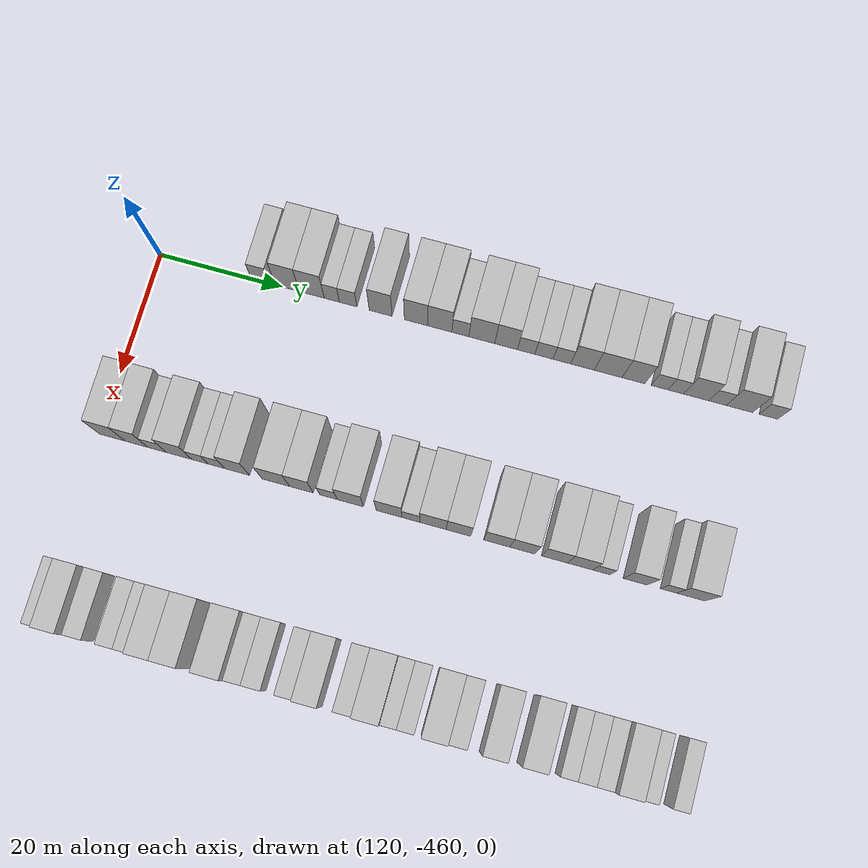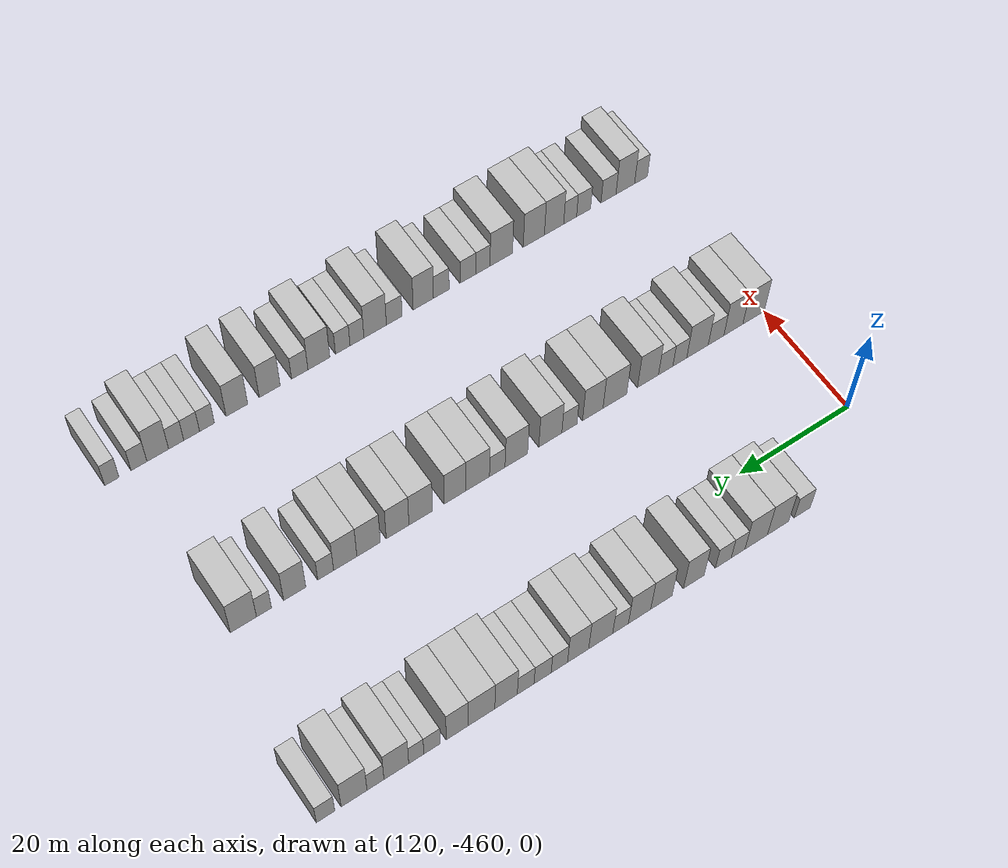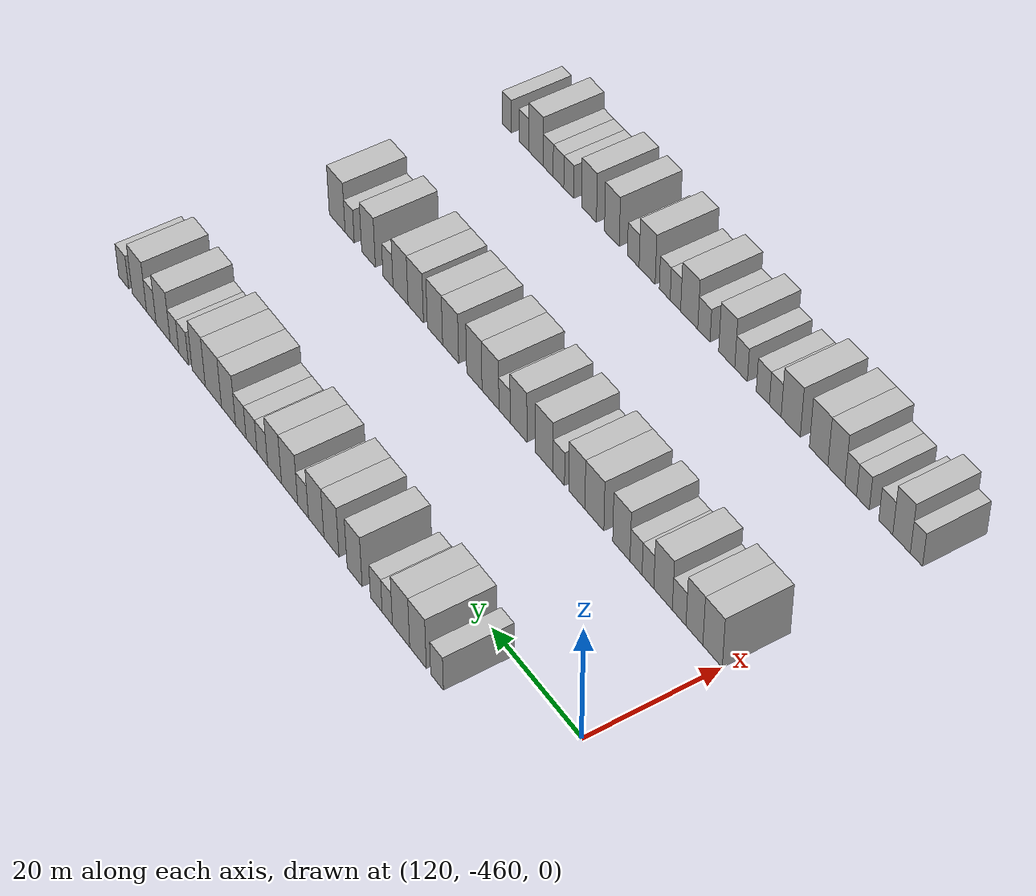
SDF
<sdf version="1.6">
 <world name="default">
  <model name="building_698">
   <static>1</static>
   <pose>115.0000 -443.5995 0 0.000000 0.000000 0.000000</pose>
   <link name="link">
    <pose>0 0 3.00 0 0 0</pose>
    <collision name="collision"><geometry><box><size>10.0000 2.9296 6.0000</size></box></geometry></collision>
    <visual name="visual">
     <cast_shadows>0</cast_shadows>
     <geometry><box><size>10.0000 2.9296 6.0000</size></box></geometry>
     <material>
      <script>
       <uri>model://HANNAS_wall/materials/scripts</uri>
       <uri>model://HANNAS_wall/materials/textures</uri>
       <name>vrc/HANNAS_wall</name>
      </script>
     </material>
    </visual>
   </link>
  </model>
  <model name="building_699">
   <static>1</static>
   <pose>115.0000 -439.1855 0 0.000000 0.000000 0.000000</pose>
   <link name="link">
    <pose>0 0 4.50 0 0 0</pose>
    <collision name="collision"><geometry><box><size>10.0000 3.8984 9.0000</size></box></geometry></collision>
    <visual name="visual">
     <cast_shadows>0</cast_shadows>
     <geometry><box><size>10.0000 3.8984 9.0000</size></box></geometry>
     <material>
      <script>
       <uri>model://HANNAS_wall/materials/scripts</uri>
       <uri>model://HANNAS_wall/materials/textures</uri>
       <name>vrc/HANNAS_wall</name>
      </script>
     </material>
    </visual>
   </link>
  </model>
  <model name="building_700">
   <static>1</static>
   <pose>115.0000 -435.1984 0 0.000000 0.000000 0.000000</pose>
   <link name="link">
    <pose>0 0 4.50 0 0 0</pose>
    <collision name="collision"><geometry><box><size>10.0000 4.0757 9.0000</size></box></geometry></collision>
    <visual name="visual">
     <cast_shadows>0</cast_shadows>
     <geometry><box><size>10.0000 4.0757 9.0000</size></box></geometry>
     <material>
      <script>
       <uri>model://HANNAS_wall/materials/scripts</uri>
       <uri>model://HANNAS_wall/materials/textures</uri>
       <name>vrc/HANNAS_wall</name>
      </script>
     </material>
    </visual>
   </link>
  </model>
  <model name="building_701">
   <static>1</static>
   <pose>115.0000 -431.9343 0 0.000000 0.000000 0.000000</pose>
   <link name="link">
    <pose>0 0 3.00 0 0 0</pose>
    <collision name="collision"><geometry><box><size>10.0000 2.4526 6.0000</size></box></geometry></collision>
    <visual name="visual">
     <cast_shadows>0</cast_shadows>
     <geometry><box><size>10.0000 2.4526 6.0000</size></box></geometry>
     <material>
      <script>
       <uri>model://HANNAS_wall/materials/scripts</uri>
       <uri>model://HANNAS_wall/materials/textures</uri>
       <name>vrc/HANNAS_wall</name>
      </script>
     </material>
    </visual>
   </link>
  </model>
  <model name="building_702">
   <static>1</static>
   <pose>115.0000 -429.2938 0 0.000000 0.000000 0.000000</pose>
   <link name="link">
    <pose>0 0 3.00 0 0 0</pose>
    <collision name="collision"><geometry><box><size>10.0000 2.8282 6.0000</size></box></geometry></collision>
    <visual name="visual">
     <cast_shadows>0</cast_shadows>
     <geometry><box><size>10.0000 2.8282 6.0000</size></box></geometry>
     <material>
      <script>
       <uri>model://HANNAS_wall/materials/scripts</uri>
       <uri>model://HANNAS_wall/materials/textures</uri>
       <name>vrc/HANNAS_wall</name>
      </script>
     </material>
    </visual>
   </link>
  </model>
  <model name="building_703">
   <static>1</static>
   <pose>115.0000 -424.0397 0 0.000000 0.000000 0.000000</pose>
   <link name="link">
    <pose>0 0 4.50 0 0 0</pose>
    <collision name="collision"><geometry><box><size>10.0000 3.6800 9.0000</size></box></geometry></collision>
    <visual name="visual">
     <cast_shadows>0</cast_shadows>
     <geometry><box><size>10.0000 3.6800 9.0000</size></box></geometry>
     <material>
      <script>
       <uri>model://HANNAS_wall/materials/scripts</uri>
       <uri>model://HANNAS_wall/materials/textures</uri>
       <name>vrc/HANNAS_wall</name>
      </script>
     </material>
    </visual>
   </link>
  </model>
  <model name="building_704">
   <static>1</static>
   <pose>115.0000 -418.3239 0 0.000000 0.000000 0.000000</pose>
   <link name="link">
    <pose>0 0 4.50 0 0 0</pose>
    <collision name="collision"><geometry><box><size>10.0000 3.7516 9.0000</size></box></geometry></collision>
    <visual name="visual">
     <cast_shadows>0</cast_shadows>
     <geometry><box><size>10.0000 3.7516 9.0000</size></box></geometry>
     <material>
      <script>
       <uri>model://HANNAS_wall/materials/scripts</uri>
       <uri>model://HANNAS_wall/materials/textures</uri>
       <name>vrc/HANNAS_wall</name>
      </script>
     </material>
    </visual>
   </link>
  </model>
  <model name="building_705">
   <static>1</static>
   <pose>115.0000 -414.5047 0 0.000000 0.000000 0.000000</pose>
   <link name="link">
    <pose>0 0 4.50 0 0 0</pose>
    <collision name="collision"><geometry><box><size>10.0000 3.8868 9.0000</size></box></geometry></collision>
    <visual name="visual">
     <cast_shadows>0</cast_shadows>
     <geometry><box><size>10.0000 3.8868 9.0000</size></box></geometry>
     <material>
      <script>
       <uri>model://HANNAS_wall/materials/scripts</uri>
       <uri>model://HANNAS_wall/materials/textures</uri>
       <name>vrc/HANNAS_wall</name>
      </script>
     </material>
    </visual>
   </link>
  </model>
  <model name="building_706">
   <static>1</static>
   <pose>115.0000 -411.2004 0 0.000000 0.000000 0.000000</pose>
   <link name="link">
    <pose>0 0 3.00 0 0 0</pose>
    <collision name="collision"><geometry><box><size>10.0000 2.7218 6.0000</size></box></geometry></collision>
    <visual name="visual">
     <cast_shadows>0</cast_shadows>
     <geometry><box><size>10.0000 2.7218 6.0000</size></box></geometry>
     <material>
      <script>
       <uri>model://HANNAS_wall/materials/scripts</uri>
       <uri>model://HANNAS_wall/materials/textures</uri>
       <name>vrc/HANNAS_wall</name>
      </script>
     </material>
    </visual>
   </link>
  </model>
  <model name="building_707">
   <static>1</static>
   <pose>115.0000 -407.7695 0 0.000000 0.000000 0.000000</pose>
   <link name="link">
    <pose>0 0 4.50 0 0 0</pose>
    <collision name="collision"><geometry><box><size>10.0000 4.1400 9.0000</size></box></geometry></collision>
    <visual name="visual">
     <cast_shadows>0</cast_shadows>
     <geometry><box><size>10.0000 4.1400 9.0000</size></box></geometry>
     <material>
      <script>
       <uri>model://HANNAS_wall/materials/scripts</uri>
       <uri>model://HANNAS_wall/materials/textures</uri>
       <name>vrc/HANNAS_wall</name>
      </script>
     </material>
    </visual>
   </link>
  </model>
  <model name="building_708">
   <static>1</static>
   <pose>115.0000 -403.8893 0 0.000000 0.000000 0.000000</pose>
   <link name="link">
    <pose>0 0 4.50 0 0 0</pose>
    <collision name="collision"><geometry><box><size>10.0000 3.6204 9.0000</size></box></geometry></collision>
    <visual name="visual">
     <cast_shadows>0</cast_shadows>
     <geometry><box><size>10.0000 3.6204 9.0000</size></box></geometry>
     <material>
      <script>
       <uri>model://HANNAS_wall/materials/scripts</uri>
       <uri>model://HANNAS_wall/materials/textures</uri>
       <name>vrc/HANNAS_wall</name>
      </script>
     </material>
    </visual>
   </link>
  </model>
  <model name="building_709">
   <static>1</static>
   <pose>115.0000 -400.6943 0 0.000000 0.000000 0.000000</pose>
   <link name="link">
    <pose>0 0 3.00 0 0 0</pose>
    <collision name="collision"><geometry><box><size>10.0000 2.7697 6.0000</size></box></geometry></collision>
    <visual name="visual">
     <cast_shadows>0</cast_shadows>
     <geometry><box><size>10.0000 2.7697 6.0000</size></box></geometry>
     <material>
      <script>
       <uri>model://HANNAS_wall/materials/scripts</uri>
       <uri>model://HANNAS_wall/materials/textures</uri>
       <name>vrc/HANNAS_wall</name>
      </script>
     </material>
    </visual>
   </link>
  </model>
  <model name="building_710">
   <static>1</static>
   <pose>115.0000 -397.8583 0 0.000000 0.000000 0.000000</pose>
   <link name="link">
    <pose>0 0 3.00 0 0 0</pose>
    <collision name="collision"><geometry><box><size>10.0000 2.9022 6.0000</size></box></geometry></collision>
    <visual name="visual">
     <cast_shadows>0</cast_shadows>
     <geometry><box><size>10.0000 2.9022 6.0000</size></box></geometry>
     <material>
      <script>
       <uri>model://HANNAS_wall/materials/scripts</uri>
       <uri>model://HANNAS_wall/materials/textures</uri>
       <name>vrc/HANNAS_wall</name>
      </script>
     </material>
    </visual>
   </link>
  </model>
  <model name="building_711">
   <static>1</static>
   <pose>115.0000 -395.0028 0 0.000000 0.000000 0.000000</pose>
   <link name="link">
    <pose>0 0 3.00 0 0 0</pose>
    <collision name="collision"><geometry><box><size>10.0000 2.8088 6.0000</size></box></geometry></collision>
    <visual name="visual">
     <cast_shadows>0</cast_shadows>
     <geometry><box><size>10.0000 2.8088 6.0000</size></box></geometry>
     <material>
      <script>
       <uri>model://HANNAS_wall/materials/scripts</uri>
       <uri>model://HANNAS_wall/materials/textures</uri>
       <name>vrc/HANNAS_wall</name>
      </script>
     </material>
    </visual>
   </link>
  </model>
  <model name="building_712">
   <static>1</static>
   <pose>115.0000 -391.7220 0 0.000000 0.000000 0.000000</pose>
   <link name="link">
    <pose>0 0 4.50 0 0 0</pose>
    <collision name="collision"><geometry><box><size>10.0000 3.7529 9.0000</size></box></geometry></collision>
    <visual name="visual">
     <cast_shadows>0</cast_shadows>
     <geometry><box><size>10.0000 3.7529 9.0000</size></box></geometry>
     <material>
      <script>
       <uri>model://HANNAS_wall/materials/scripts</uri>
       <uri>model://HANNAS_wall/materials/textures</uri>
       <name>vrc/HANNAS_wall</name>
      </script>
     </material>
    </visual>
   </link>
  </model>
  <model name="building_713">
   <static>1</static>
   <pose>115.0000 -387.6395 0 0.000000 0.000000 0.000000</pose>
   <link name="link">
    <pose>0 0 4.50 0 0 0</pose>
    <collision name="collision"><geometry><box><size>10.0000 4.4121 9.0000</size></box></geometry></collision>
    <visual name="visual">
     <cast_shadows>0</cast_shadows>
     <geometry><box><size>10.0000 4.4121 9.0000</size></box></geometry>
     <material>
      <script>
       <uri>model://HANNAS_wall/materials/scripts</uri>
       <uri>model://HANNAS_wall/materials/textures</uri>
       <name>vrc/HANNAS_wall</name>
      </script>
     </material>
    </visual>
   </link>
  </model>
  <model name="building_714">
   <static>1</static>
   <pose>115.0000 -383.6202 0 0.000000 0.000000 0.000000</pose>
   <link name="link">
    <pose>0 0 4.50 0 0 0</pose>
    <collision name="collision"><geometry><box><size>10.0000 3.6266 9.0000</size></box></geometry></collision>
    <visual name="visual">
     <cast_shadows>0</cast_shadows>
     <geometry><box><size>10.0000 3.6266 9.0000</size></box></geometry>
     <material>
      <script>
       <uri>model://HANNAS_wall/materials/scripts</uri>
       <uri>model://HANNAS_wall/materials/textures</uri>
       <name>vrc/HANNAS_wall</name>
      </script>
     </material>
    </visual>
   </link>
  </model>
  <model name="building_715">
   <static>1</static>
   <pose>115.0000 -379.4750 0 0.000000 0.000000 0.000000</pose>
   <link name="link">
    <pose>0 0 3.00 0 0 0</pose>
    <collision name="collision"><geometry><box><size>10.0000 2.6637 6.0000</size></box></geometry></collision>
    <visual name="visual">
     <cast_shadows>0</cast_shadows>
     <geometry><box><size>10.0000 2.6637 6.0000</size></box></geometry>
     <material>
      <script>
       <uri>model://HANNAS_wall/materials/scripts</uri>
       <uri>model://HANNAS_wall/materials/textures</uri>
       <name>vrc/HANNAS_wall</name>
      </script>
     </material>
    </visual>
   </link>
  </model>
  <model name="building_716">
   <static>1</static>
   <pose>115.0000 -376.9219 0 0.000000 0.000000 0.000000</pose>
   <link name="link">
    <pose>0 0 3.00 0 0 0</pose>
    <collision name="collision"><geometry><box><size>10.0000 2.4426 6.0000</size></box></geometry></collision>
    <visual name="visual">
     <cast_shadows>0</cast_shadows>
     <geometry><box><size>10.0000 2.4426 6.0000</size></box></geometry>
     <material>
      <script>
       <uri>model://HANNAS_wall/materials/scripts</uri>
       <uri>model://HANNAS_wall/materials/textures</uri>
       <name>vrc/HANNAS_wall</name>
      </script>
     </material>
    </visual>
   </link>
  </model>
  <model name="building_717">
   <static>1</static>
   <pose>115.0000 -373.7049 0 0.000000 0.000000 0.000000</pose>
   <link name="link">
    <pose>0 0 4.50 0 0 0</pose>
    <collision name="collision"><geometry><box><size>10.0000 3.9914 9.0000</size></box></geometry></collision>
    <visual name="visual">
     <cast_shadows>0</cast_shadows>
     <geometry><box><size>10.0000 3.9914 9.0000</size></box></geometry>
     <material>
      <script>
       <uri>model://HANNAS_wall/materials/scripts</uri>
       <uri>model://HANNAS_wall/materials/textures</uri>
       <name>vrc/HANNAS_wall</name>
      </script>
     </material>
    </visual>
   </link>
  </model>
  <model name="building_718">
   <static>1</static>
   <pose>115.0000 -370.3459 0 0.000000 0.000000 0.000000</pose>
   <link name="link">
    <pose>0 0 3.00 0 0 0</pose>
    <collision name="collision"><geometry><box><size>10.0000 2.7265 6.0000</size></box></geometry></collision>
    <visual name="visual">
     <cast_shadows>0</cast_shadows>
     <geometry><box><size>10.0000 2.7265 6.0000</size></box></geometry>
     <material>
      <script>
       <uri>model://HANNAS_wall/materials/scripts</uri>
       <uri>model://HANNAS_wall/materials/textures</uri>
       <name>vrc/HANNAS_wall</name>
      </script>
     </material>
    </visual>
   </link>
  </model>
  <model name="building_719">
   <static>1</static>
   <pose>115.0000 -366.9175 0 0.000000 0.000000 0.000000</pose>
   <link name="link">
    <pose>0 0 4.50 0 0 0</pose>
    <collision name="collision"><geometry><box><size>10.0000 4.1303 9.0000</size></box></geometry></collision>
    <visual name="visual">
     <cast_shadows>0</cast_shadows>
     <geometry><box><size>10.0000 4.1303 9.0000</size></box></geometry>
     <material>
      <script>
       <uri>model://HANNAS_wall/materials/scripts</uri>
       <uri>model://HANNAS_wall/materials/textures</uri>
       <name>vrc/HANNAS_wall</name>
      </script>
     </material>
    </visual>
   </link>
  </model>
  <model name="building_720">
   <static>1</static>
   <pose>115.0000 -362.3965 0 0.000000 0.000000 0.000000</pose>
   <link name="link">
    <pose>0 0 3.00 0 0 0</pose>
    <collision name="collision"><geometry><box><size>10.0000 2.9118 6.0000</size></box></geometry></collision>
    <visual name="visual">
     <cast_shadows>0</cast_shadows>
     <geometry><box><size>10.0000 2.9118 6.0000</size></box></geometry>
     <material>
      <script>
       <uri>model://HANNAS_wall/materials/scripts</uri>
       <uri>model://HANNAS_wall/materials/textures</uri>
       <name>vrc/HANNAS_wall</name>
      </script>
     </material>
    </visual>
   </link>
  </model>
  <model name="building_915">
   <static>1</static>
   <pose>145.0000 -457.9413 0 0.000000 0.000000 0.000000</pose>
   <link name="link">
    <pose>0 0 4.50 0 0 0</pose>
    <collision name="collision"><geometry><box><size>10.0000 4.1174 9.0000</size></box></geometry></collision>
    <visual name="visual">
     <cast_shadows>0</cast_shadows>
     <geometry><box><size>10.0000 4.1174 9.0000</size></box></geometry>
     <material>
      <script>
       <uri>model://HANNAS_wall/materials/scripts</uri>
       <uri>model://HANNAS_wall/materials/textures</uri>
       <name>vrc/HANNAS_wall</name>
      </script>
     </material>
    </visual>
   </link>
  </model>
  <model name="building_916">
   <static>1</static>
   <pose>145.0000 -454.0753 0 0.000000 0.000000 0.000000</pose>
   <link name="link">
    <pose>0 0 4.50 0 0 0</pose>
    <collision name="collision"><geometry><box><size>10.0000 3.6146 9.0000</size></box></geometry></collision>
    <visual name="visual">
     <cast_shadows>0</cast_shadows>
     <geometry><box><size>10.0000 3.6146 9.0000</size></box></geometry>
     <material>
      <script>
       <uri>model://HANNAS_wall/materials/scripts</uri>
       <uri>model://HANNAS_wall/materials/textures</uri>
       <name>vrc/HANNAS_wall</name>
      </script>
     </material>
    </visual>
   </link>
  </model>
  <model name="building_917">
   <static>1</static>
   <pose>145.0000 -450.7902 0 0.000000 0.000000 0.000000</pose>
   <link name="link">
    <pose>0 0 3.00 0 0 0</pose>
    <collision name="collision"><geometry><box><size>10.0000 2.9557 6.0000</size></box></geometry></collision>
    <visual name="visual">
     <cast_shadows>0</cast_shadows>
     <geometry><box><size>10.0000 2.9557 6.0000</size></box></geometry>
     <material>
      <script>
       <uri>model://HANNAS_wall/materials/scripts</uri>
       <uri>model://HANNAS_wall/materials/textures</uri>
       <name>vrc/HANNAS_wall</name>
      </script>
     </material>
    </visual>
   </link>
  </model>
  <model name="building_918">
   <static>1</static>
   <pose>145.0000 -447.2858 0 0.000000 0.000000 0.000000</pose>
   <link name="link">
    <pose>0 0 4.50 0 0 0</pose>
    <collision name="collision"><geometry><box><size>10.0000 4.0530 9.0000</size></box></geometry></collision>
    <visual name="visual">
     <cast_shadows>0</cast_shadows>
     <geometry><box><size>10.0000 4.0530 9.0000</size></box></geometry>
     <material>
      <script>
       <uri>model://HANNAS_wall/materials/scripts</uri>
       <uri>model://HANNAS_wall/materials/textures</uri>
       <name>vrc/HANNAS_wall</name>
      </script>
     </material>
    </visual>
   </link>
  </model>
  <model name="building_919">
   <static>1</static>
   <pose>145.0000 -443.9669 0 0.000000 0.000000 0.000000</pose>
   <link name="link">
    <pose>0 0 3.00 0 0 0</pose>
    <collision name="collision"><geometry><box><size>10.0000 2.5848 6.0000</size></box></geometry></collision>
    <visual name="visual">
     <cast_shadows>0</cast_shadows>
     <geometry><box><size>10.0000 2.5848 6.0000</size></box></geometry>
     <material>
      <script>
       <uri>model://HANNAS_wall/materials/scripts</uri>
       <uri>model://HANNAS_wall/materials/textures</uri>
       <name>vrc/HANNAS_wall</name>
      </script>
     </material>
    </visual>
   </link>
  </model>
  <model name="building_920">
   <static>1</static>
   <pose>145.0000 -441.3345 0 0.000000 0.000000 0.000000</pose>
   <link name="link">
    <pose>0 0 3.00 0 0 0</pose>
    <collision name="collision"><geometry><box><size>10.0000 2.6800 6.0000</size></box></geometry></collision>
    <visual name="visual">
     <cast_shadows>0</cast_shadows>
     <geometry><box><size>10.0000 2.6800 6.0000</size></box></geometry>
     <material>
      <script>
       <uri>model://HANNAS_wall/materials/scripts</uri>
       <uri>model://HANNAS_wall/materials/textures</uri>
       <name>vrc/HANNAS_wall</name>
      </script>
     </material>
    </visual>
   </link>
  </model>
  <model name="building_921">
   <static>1</static>
   <pose>145.0000 -438.0496 0 0.000000 0.000000 0.000000</pose>
   <link name="link">
    <pose>0 0 4.50 0 0 0</pose>
    <collision name="collision"><geometry><box><size>10.0000 3.8899 9.0000</size></box></geometry></collision>
    <visual name="visual">
     <cast_shadows>0</cast_shadows>
     <geometry><box><size>10.0000 3.8899 9.0000</size></box></geometry>
     <material>
      <script>
       <uri>model://HANNAS_wall/materials/scripts</uri>
       <uri>model://HANNAS_wall/materials/textures</uri>
       <name>vrc/HANNAS_wall</name>
      </script>
     </material>
    </visual>
   </link>
  </model>
  <model name="building_922">
   <static>1</static>
   <pose>145.0000 -431.9407 0 0.000000 0.000000 0.000000</pose>
   <link name="link">
    <pose>0 0 4.50 0 0 0</pose>
    <collision name="collision"><geometry><box><size>10.0000 4.3278 9.0000</size></box></geometry></collision>
    <visual name="visual">
     <cast_shadows>0</cast_shadows>
     <geometry><box><size>10.0000 4.3278 9.0000</size></box></geometry>
     <material>
      <script>
       <uri>model://HANNAS_wall/materials/scripts</uri>
       <uri>model://HANNAS_wall/materials/textures</uri>
       <name>vrc/HANNAS_wall</name>
      </script>
     </material>
    </visual>
   </link>
  </model>
  <model name="building_923">
   <static>1</static>
   <pose>145.0000 -427.9096 0 0.000000 0.000000 0.000000</pose>
   <link name="link">
    <pose>0 0 4.50 0 0 0</pose>
    <collision name="collision"><geometry><box><size>10.0000 3.7344 9.0000</size></box></geometry></collision>
    <visual name="visual">
     <cast_shadows>0</cast_shadows>
     <geometry><box><size>10.0000 3.7344 9.0000</size></box></geometry>
     <material>
      <script>
       <uri>model://HANNAS_wall/materials/scripts</uri>
       <uri>model://HANNAS_wall/materials/textures</uri>
       <name>vrc/HANNAS_wall</name>
      </script>
     </material>
    </visual>
   </link>
  </model>
  <model name="building_924">
   <static>1</static>
   <pose>145.0000 -423.6688 0 0.000000 0.000000 0.000000</pose>
   <link name="link">
    <pose>0 0 3.00 0 0 0</pose>
    <collision name="collision"><geometry><box><size>10.0000 2.7472 6.0000</size></box></geometry></collision>
    <visual name="visual">
     <cast_shadows>0</cast_shadows>
     <geometry><box><size>10.0000 2.7472 6.0000</size></box></geometry>
     <material>
      <script>
       <uri>model://HANNAS_wall/materials/scripts</uri>
       <uri>model://HANNAS_wall/materials/textures</uri>
       <name>vrc/HANNAS_wall</name>
      </script>
     </material>
    </visual>
   </link>
  </model>
  <model name="building_925">
   <static>1</static>
   <pose>145.0000 -420.2293 0 0.000000 0.000000 0.000000</pose>
   <link name="link">
    <pose>0 0 4.50 0 0 0</pose>
    <collision name="collision"><geometry><box><size>10.0000 4.1318 9.0000</size></box></geometry></collision>
    <visual name="visual">
     <cast_shadows>0</cast_shadows>
     <geometry><box><size>10.0000 4.1318 9.0000</size></box></geometry>
     <material>
      <script>
       <uri>model://HANNAS_wall/materials/scripts</uri>
       <uri>model://HANNAS_wall/materials/textures</uri>
       <name>vrc/HANNAS_wall</name>
      </script>
     </material>
    </visual>
   </link>
  </model>
  <model name="building_926">
   <static>1</static>
   <pose>145.0000 -414.1540 0 0.000000 0.000000 0.000000</pose>
   <link name="link">
    <pose>0 0 4.50 0 0 0</pose>
    <collision name="collision"><geometry><box><size>10.0000 4.0189 9.0000</size></box></geometry></collision>
    <visual name="visual">
     <cast_shadows>0</cast_shadows>
     <geometry><box><size>10.0000 4.0189 9.0000</size></box></geometry>
     <material>
      <script>
       <uri>model://HANNAS_wall/materials/scripts</uri>
       <uri>model://HANNAS_wall/materials/textures</uri>
       <name>vrc/HANNAS_wall</name>
      </script>
     </material>
    </visual>
   </link>
  </model>
  <model name="building_927">
   <static>1</static>
   <pose>145.0000 -410.7741 0 0.000000 0.000000 0.000000</pose>
   <link name="link">
    <pose>0 0 3.00 0 0 0</pose>
    <collision name="collision"><geometry><box><size>10.0000 2.7409 6.0000</size></box></geometry></collision>
    <visual name="visual">
     <cast_shadows>0</cast_shadows>
     <geometry><box><size>10.0000 2.7409 6.0000</size></box></geometry>
     <material>
      <script>
       <uri>model://HANNAS_wall/materials/scripts</uri>
       <uri>model://HANNAS_wall/materials/textures</uri>
       <name>vrc/HANNAS_wall</name>
      </script>
     </material>
    </visual>
   </link>
  </model>
  <model name="building_928">
   <static>1</static>
   <pose>145.0000 -407.3245 0 0.000000 0.000000 0.000000</pose>
   <link name="link">
    <pose>0 0 4.50 0 0 0</pose>
    <collision name="collision"><geometry><box><size>10.0000 4.1583 9.0000</size></box></geometry></collision>
    <visual name="visual">
     <cast_shadows>0</cast_shadows>
     <geometry><box><size>10.0000 4.1583 9.0000</size></box></geometry>
     <material>
      <script>
       <uri>model://HANNAS_wall/materials/scripts</uri>
       <uri>model://HANNAS_wall/materials/textures</uri>
       <name>vrc/HANNAS_wall</name>
      </script>
     </material>
    </visual>
   </link>
  </model>
  <model name="building_929">
   <static>1</static>
   <pose>145.0000 -403.3479 0 0.000000 0.000000 0.000000</pose>
   <link name="link">
    <pose>0 0 4.50 0 0 0</pose>
    <collision name="collision"><geometry><box><size>10.0000 3.7951 9.0000</size></box></geometry></collision>
    <visual name="visual">
     <cast_shadows>0</cast_shadows>
     <geometry><box><size>10.0000 3.7951 9.0000</size></box></geometry>
     <material>
      <script>
       <uri>model://HANNAS_wall/materials/scripts</uri>
       <uri>model://HANNAS_wall/materials/textures</uri>
       <name>vrc/HANNAS_wall</name>
      </script>
     </material>
    </visual>
   </link>
  </model>
  <model name="building_930">
   <static>1</static>
   <pose>145.0000 -397.4223 0 0.000000 0.000000 0.000000</pose>
   <link name="link">
    <pose>0 0 4.50 0 0 0</pose>
    <collision name="collision"><geometry><box><size>10.0000 4.0562 9.0000</size></box></geometry></collision>
    <visual name="visual">
     <cast_shadows>0</cast_shadows>
     <geometry><box><size>10.0000 4.0562 9.0000</size></box></geometry>
     <material>
      <script>
       <uri>model://HANNAS_wall/materials/scripts</uri>
       <uri>model://HANNAS_wall/materials/textures</uri>
       <name>vrc/HANNAS_wall</name>
      </script>
     </material>
    </visual>
   </link>
  </model>
  <model name="building_931">
   <static>1</static>
   <pose>145.0000 -393.4484 0 0.000000 0.000000 0.000000</pose>
   <link name="link">
    <pose>0 0 4.50 0 0 0</pose>
    <collision name="collision"><geometry><box><size>10.0000 3.8916 9.0000</size></box></geometry></collision>
    <visual name="visual">
     <cast_shadows>0</cast_shadows>
     <geometry><box><size>10.0000 3.8916 9.0000</size></box></geometry>
     <material>
      <script>
       <uri>model://HANNAS_wall/materials/scripts</uri>
       <uri>model://HANNAS_wall/materials/textures</uri>
       <name>vrc/HANNAS_wall</name>
      </script>
     </material>
    </visual>
   </link>
  </model>
  <model name="building_932">
   <static>1</static>
   <pose>145.0000 -388.5059 0 0.000000 0.000000 0.000000</pose>
   <link name="link">
    <pose>0 0 4.50 0 0 0</pose>
    <collision name="collision"><geometry><box><size>10.0000 3.9932 9.0000</size></box></geometry></collision>
    <visual name="visual">
     <cast_shadows>0</cast_shadows>
     <geometry><box><size>10.0000 3.9932 9.0000</size></box></geometry>
     <material>
      <script>
       <uri>model://HANNAS_wall/materials/scripts</uri>
       <uri>model://HANNAS_wall/materials/textures</uri>
       <name>vrc/HANNAS_wall</name>
      </script>
     </material>
    </visual>
   </link>
  </model>
  <model name="building_933">
   <static>1</static>
   <pose>145.0000 -384.5491 0 0.000000 0.000000 0.000000</pose>
   <link name="link">
    <pose>0 0 4.50 0 0 0</pose>
    <collision name="collision"><geometry><box><size>10.0000 3.9203 9.0000</size></box></geometry></collision>
    <visual name="visual">
     <cast_shadows>0</cast_shadows>
     <geometry><box><size>10.0000 3.9203 9.0000</size></box></geometry>
     <material>
      <script>
       <uri>model://HANNAS_wall/materials/scripts</uri>
       <uri>model://HANNAS_wall/materials/textures</uri>
       <name>vrc/HANNAS_wall</name>
      </script>
     </material>
    </visual>
   </link>
  </model>
  <model name="building_934">
   <static>1</static>
   <pose>145.0000 -381.2553 0 0.000000 0.000000 0.000000</pose>
   <link name="link">
    <pose>0 0 3.00 0 0 0</pose>
    <collision name="collision"><geometry><box><size>10.0000 2.6674 6.0000</size></box></geometry></collision>
    <visual name="visual">
     <cast_shadows>0</cast_shadows>
     <geometry><box><size>10.0000 2.6674 6.0000</size></box></geometry>
     <material>
      <script>
       <uri>model://HANNAS_wall/materials/scripts</uri>
       <uri>model://HANNAS_wall/materials/textures</uri>
       <name>vrc/HANNAS_wall</name>
      </script>
     </material>
    </visual>
   </link>
  </model>
  <model name="building_935">
   <static>1</static>
   <pose>145.0000 -376.0848 0 0.000000 0.000000 0.000000</pose>
   <link name="link">
    <pose>0 0 4.50 0 0 0</pose>
    <collision name="collision"><geometry><box><size>10.0000 3.6736 9.0000</size></box></geometry></collision>
    <visual name="visual">
     <cast_shadows>0</cast_shadows>
     <geometry><box><size>10.0000 3.6736 9.0000</size></box></geometry>
     <material>
      <script>
       <uri>model://HANNAS_wall/materials/scripts</uri>
       <uri>model://HANNAS_wall/materials/textures</uri>
       <name>vrc/HANNAS_wall</name>
      </script>
     </material>
    </visual>
   </link>
  </model>
  <model name="building_936">
   <static>1</static>
   <pose>145.0000 -371.0066 0 0.000000 0.000000 0.000000</pose>
   <link name="link">
    <pose>0 0 3.00 0 0 0</pose>
    <collision name="collision"><geometry><box><size>10.0000 2.4828 6.0000</size></box></geometry></collision>
    <visual name="visual">
     <cast_shadows>0</cast_shadows>
     <geometry><box><size>10.0000 2.4828 6.0000</size></box></geometry>
     <material>
      <script>
       <uri>model://HANNAS_wall/materials/scripts</uri>
       <uri>model://HANNAS_wall/materials/textures</uri>
       <name>vrc/HANNAS_wall</name>
      </script>
     </material>
    </visual>
   </link>
  </model>
  <model name="building_937">
   <static>1</static>
   <pose>145.0000 -367.6151 0 0.000000 0.000000 0.000000</pose>
   <link name="link">
    <pose>0 0 4.50 0 0 0</pose>
    <collision name="collision"><geometry><box><size>10.0000 4.3002 9.0000</size></box></geometry></collision>
    <visual name="visual">
     <cast_shadows>0</cast_shadows>
     <geometry><box><size>10.0000 4.3002 9.0000</size></box></geometry>
     <material>
      <script>
       <uri>model://HANNAS_wall/materials/scripts</uri>
       <uri>model://HANNAS_wall/materials/textures</uri>
       <name>vrc/HANNAS_wall</name>
      </script>
     </material>
    </visual>
   </link>
  </model>
  <model name="building_1146">
   <static>1</static>
   <pose>175.0000 -458.7467 0 0.000000 0.000000 0.000000</pose>
   <link name="link">
    <pose>0 0 3.00 0 0 0</pose>
    <collision name="collision"><geometry><box><size>10.0000 2.5066 6.0000</size></box></geometry></collision>
    <visual name="visual">
     <cast_shadows>0</cast_shadows>
     <geometry><box><size>10.0000 2.5066 6.0000</size></box></geometry>
     <material>
      <script>
       <uri>model://HANNAS_wall/materials/scripts</uri>
       <uri>model://HANNAS_wall/materials/textures</uri>
       <name>vrc/HANNAS_wall</name>
      </script>
     </material>
    </visual>
   </link>
  </model>
  <model name="building_1147">
   <static>1</static>
   <pose>175.0000 -455.6865 0 0.000000 0.000000 0.000000</pose>
   <link name="link">
    <pose>0 0 4.50 0 0 0</pose>
    <collision name="collision"><geometry><box><size>10.0000 3.6139 9.0000</size></box></geometry></collision>
    <visual name="visual">
     <cast_shadows>0</cast_shadows>
     <geometry><box><size>10.0000 3.6139 9.0000</size></box></geometry>
     <material>
      <script>
       <uri>model://HANNAS_wall/materials/scripts</uri>
       <uri>model://HANNAS_wall/materials/textures</uri>
       <name>vrc/HANNAS_wall</name>
      </script>
     </material>
    </visual>
   </link>
  </model>
  <model name="building_1148">
   <static>1</static>
   <pose>175.0000 -452.4267 0 0.000000 0.000000 0.000000</pose>
   <link name="link">
    <pose>0 0 3.00 0 0 0</pose>
    <collision name="collision"><geometry><box><size>10.0000 2.9057 6.0000</size></box></geometry></collision>
    <visual name="visual">
     <cast_shadows>0</cast_shadows>
     <geometry><box><size>10.0000 2.9057 6.0000</size></box></geometry>
     <material>
      <script>
       <uri>model://HANNAS_wall/materials/scripts</uri>
       <uri>model://HANNAS_wall/materials/textures</uri>
       <name>vrc/HANNAS_wall</name>
      </script>
     </material>
    </visual>
   </link>
  </model>
  <model name="building_1149">
   <static>1</static>
   <pose>175.0000 -447.6343 0 0.000000 0.000000 0.000000</pose>
   <link name="link">
    <pose>0 0 3.00 0 0 0</pose>
    <collision name="collision"><geometry><box><size>10.0000 2.6793 6.0000</size></box></geometry></collision>
    <visual name="visual">
     <cast_shadows>0</cast_shadows>
     <geometry><box><size>10.0000 2.6793 6.0000</size></box></geometry>
     <material>
      <script>
       <uri>model://HANNAS_wall/materials/scripts</uri>
       <uri>model://HANNAS_wall/materials/textures</uri>
       <name>vrc/HANNAS_wall</name>
      </script>
     </material>
    </visual>
   </link>
  </model>
  <model name="building_1150">
   <static>1</static>
   <pose>175.0000 -445.0583 0 0.000000 0.000000 0.000000</pose>
   <link name="link">
    <pose>0 0 3.00 0 0 0</pose>
    <collision name="collision"><geometry><box><size>10.0000 2.4726 6.0000</size></box></geometry></collision>
    <visual name="visual">
     <cast_shadows>0</cast_shadows>
     <geometry><box><size>10.0000 2.4726 6.0000</size></box></geometry>
     <material>
      <script>
       <uri>model://HANNAS_wall/materials/scripts</uri>
       <uri>model://HANNAS_wall/materials/textures</uri>
       <name>vrc/HANNAS_wall</name>
      </script>
     </material>
    </visual>
   </link>
  </model>
  <model name="building_1151">
   <static>1</static>
   <pose>175.0000 -441.9937 0 0.000000 0.000000 0.000000</pose>
   <link name="link">
    <pose>0 0 4.50 0 0 0</pose>
    <collision name="collision"><geometry><box><size>10.0000 3.6567 9.0000</size></box></geometry></collision>
    <visual name="visual">
     <cast_shadows>0</cast_shadows>
     <geometry><box><size>10.0000 3.6567 9.0000</size></box></geometry>
     <material>
      <script>
       <uri>model://HANNAS_wall/materials/scripts</uri>
       <uri>model://HANNAS_wall/materials/textures</uri>
       <name>vrc/HANNAS_wall</name>
      </script>
     </material>
    </visual>
   </link>
  </model>
  <model name="building_1152">
   <static>1</static>
   <pose>175.0000 -438.1615 0 0.000000 0.000000 0.000000</pose>
   <link name="link">
    <pose>0 0 4.50 0 0 0</pose>
    <collision name="collision"><geometry><box><size>10.0000 4.0078 9.0000</size></box></geometry></collision>
    <visual name="visual">
     <cast_shadows>0</cast_shadows>
     <geometry><box><size>10.0000 4.0078 9.0000</size></box></geometry>
     <material>
      <script>
       <uri>model://HANNAS_wall/materials/scripts</uri>
       <uri>model://HANNAS_wall/materials/textures</uri>
       <name>vrc/HANNAS_wall</name>
      </script>
     </material>
    </visual>
   </link>
  </model>
  <model name="building_1153">
   <static>1</static>
   <pose>175.0000 -432.0461 0 0.000000 0.000000 0.000000</pose>
   <link name="link">
    <pose>0 0 4.50 0 0 0</pose>
    <collision name="collision"><geometry><box><size>10.0000 4.2231 9.0000</size></box></geometry></collision>
    <visual name="visual">
     <cast_shadows>0</cast_shadows>
     <geometry><box><size>10.0000 4.2231 9.0000</size></box></geometry>
     <material>
      <script>
       <uri>model://HANNAS_wall/materials/scripts</uri>
       <uri>model://HANNAS_wall/materials/textures</uri>
       <name>vrc/HANNAS_wall</name>
      </script>
     </material>
    </visual>
   </link>
  </model>
  <model name="building_1154">
   <static>1</static>
   <pose>175.0000 -428.6240 0 0.000000 0.000000 0.000000</pose>
   <link name="link">
    <pose>0 0 3.00 0 0 0</pose>
    <collision name="collision"><geometry><box><size>10.0000 2.6210 6.0000</size></box></geometry></collision>
    <visual name="visual">
     <cast_shadows>0</cast_shadows>
     <geometry><box><size>10.0000 2.6210 6.0000</size></box></geometry>
     <material>
      <script>
       <uri>model://HANNAS_wall/materials/scripts</uri>
       <uri>model://HANNAS_wall/materials/textures</uri>
       <name>vrc/HANNAS_wall</name>
      </script>
     </material>
    </visual>
   </link>
  </model>
  <model name="building_1155">
   <static>1</static>
   <pose>175.0000 -425.8458 0 0.000000 0.000000 0.000000</pose>
   <link name="link">
    <pose>0 0 3.00 0 0 0</pose>
    <collision name="collision"><geometry><box><size>10.0000 2.9355 6.0000</size></box></geometry></collision>
    <visual name="visual">
     <cast_shadows>0</cast_shadows>
     <geometry><box><size>10.0000 2.9355 6.0000</size></box></geometry>
     <material>
      <script>
       <uri>model://HANNAS_wall/materials/scripts</uri>
       <uri>model://HANNAS_wall/materials/textures</uri>
       <name>vrc/HANNAS_wall</name>
      </script>
     </material>
    </visual>
   </link>
  </model>
  <model name="building_1156">
   <static>1</static>
   <pose>175.0000 -420.9410 0 0.000000 0.000000 0.000000</pose>
   <link name="link">
    <pose>0 0 3.00 0 0 0</pose>
    <collision name="collision"><geometry><box><size>10.0000 2.8741 6.0000</size></box></geometry></collision>
    <visual name="visual">
     <cast_shadows>0</cast_shadows>
     <geometry><box><size>10.0000 2.8741 6.0000</size></box></geometry>
     <material>
      <script>
       <uri>model://HANNAS_wall/materials/scripts</uri>
       <uri>model://HANNAS_wall/materials/textures</uri>
       <name>vrc/HANNAS_wall</name>
      </script>
     </material>
    </visual>
   </link>
  </model>
  <model name="building_1157">
   <static>1</static>
   <pose>175.0000 -417.6550 0 0.000000 0.000000 0.000000</pose>
   <link name="link">
    <pose>0 0 4.50 0 0 0</pose>
    <collision name="collision"><geometry><box><size>10.0000 3.6979 9.0000</size></box></geometry></collision>
    <visual name="visual">
     <cast_shadows>0</cast_shadows>
     <geometry><box><size>10.0000 3.6979 9.0000</size></box></geometry>
     <material>
      <script>
       <uri>model://HANNAS_wall/materials/scripts</uri>
       <uri>model://HANNAS_wall/materials/textures</uri>
       <name>vrc/HANNAS_wall</name>
      </script>
     </material>
    </visual>
   </link>
  </model>
  <model name="building_1158">
   <static>1</static>
   <pose>175.0000 -412.3783 0 0.000000 0.000000 0.000000</pose>
   <link name="link">
    <pose>0 0 3.00 0 0 0</pose>
    <collision name="collision"><geometry><box><size>10.0000 2.8554 6.0000</size></box></geometry></collision>
    <visual name="visual">
     <cast_shadows>0</cast_shadows>
     <geometry><box><size>10.0000 2.8554 6.0000</size></box></geometry>
     <material>
      <script>
       <uri>model://HANNAS_wall/materials/scripts</uri>
       <uri>model://HANNAS_wall/materials/textures</uri>
       <name>vrc/HANNAS_wall</name>
      </script>
     </material>
    </visual>
   </link>
  </model>
  <model name="building_1159">
   <static>1</static>
   <pose>175.0000 -408.9320 0 0.000000 0.000000 0.000000</pose>
   <link name="link">
    <pose>0 0 4.50 0 0 0</pose>
    <collision name="collision"><geometry><box><size>10.0000 4.0373 9.0000</size></box></geometry></collision>
    <visual name="visual">
     <cast_shadows>0</cast_shadows>
     <geometry><box><size>10.0000 4.0373 9.0000</size></box></geometry>
     <material>
      <script>
       <uri>model://HANNAS_wall/materials/scripts</uri>
       <uri>model://HANNAS_wall/materials/textures</uri>
       <name>vrc/HANNAS_wall</name>
      </script>
     </material>
    </visual>
   </link>
  </model>
  <model name="building_1160">
   <static>1</static>
   <pose>175.0000 -405.6730 0 0.000000 0.000000 0.000000</pose>
   <link name="link">
    <pose>0 0 3.00 0 0 0</pose>
    <collision name="collision"><geometry><box><size>10.0000 2.4807 6.0000</size></box></geometry></collision>
    <visual name="visual">
     <cast_shadows>0</cast_shadows>
     <geometry><box><size>10.0000 2.4807 6.0000</size></box></geometry>
     <material>
      <script>
       <uri>model://HANNAS_wall/materials/scripts</uri>
       <uri>model://HANNAS_wall/materials/textures</uri>
       <name>vrc/HANNAS_wall</name>
      </script>
     </material>
    </visual>
   </link>
  </model>
  <model name="building_1161">
   <static>1</static>
   <pose>175.0000 -403.1340 0 0.000000 0.000000 0.000000</pose>
   <link name="link">
    <pose>0 0 3.00 0 0 0</pose>
    <collision name="collision"><geometry><box><size>10.0000 2.5973 6.0000</size></box></geometry></collision>
    <visual name="visual">
     <cast_shadows>0</cast_shadows>
     <geometry><box><size>10.0000 2.5973 6.0000</size></box></geometry>
     <material>
      <script>
       <uri>model://HANNAS_wall/materials/scripts</uri>
       <uri>model://HANNAS_wall/materials/textures</uri>
       <name>vrc/HANNAS_wall</name>
      </script>
     </material>
    </visual>
   </link>
  </model>
  <model name="building_1162">
   <static>1</static>
   <pose>175.0000 -398.8968 0 0.000000 0.000000 0.000000</pose>
   <link name="link">
    <pose>0 0 4.50 0 0 0</pose>
    <collision name="collision"><geometry><box><size>10.0000 3.8772 9.0000</size></box></geometry></collision>
    <visual name="visual">
     <cast_shadows>0</cast_shadows>
     <geometry><box><size>10.0000 3.8772 9.0000</size></box></geometry>
     <material>
      <script>
       <uri>model://HANNAS_wall/materials/scripts</uri>
       <uri>model://HANNAS_wall/materials/textures</uri>
       <name>vrc/HANNAS_wall</name>
      </script>
     </material>
    </visual>
   </link>
  </model>
  <model name="building_1163">
   <static>1</static>
   <pose>175.0000 -395.5238 0 0.000000 0.000000 0.000000</pose>
   <link name="link">
    <pose>0 0 3.00 0 0 0</pose>
    <collision name="collision"><geometry><box><size>10.0000 2.8688 6.0000</size></box></geometry></collision>
    <visual name="visual">
     <cast_shadows>0</cast_shadows>
     <geometry><box><size>10.0000 2.8688 6.0000</size></box></geometry>
     <material>
      <script>
       <uri>model://HANNAS_wall/materials/scripts</uri>
       <uri>model://HANNAS_wall/materials/textures</uri>
       <name>vrc/HANNAS_wall</name>
      </script>
     </material>
    </visual>
   </link>
  </model>
  <model name="building_1164">
   <static>1</static>
   <pose>175.0000 -390.2640 0 0.000000 0.000000 0.000000</pose>
   <link name="link">
    <pose>0 0 4.50 0 0 0</pose>
    <collision name="collision"><geometry><box><size>10.0000 3.6507 9.0000</size></box></geometry></collision>
    <visual name="visual">
     <cast_shadows>0</cast_shadows>
     <geometry><box><size>10.0000 3.6507 9.0000</size></box></geometry>
     <material>
      <script>
       <uri>model://HANNAS_wall/materials/scripts</uri>
       <uri>model://HANNAS_wall/materials/textures</uri>
       <name>vrc/HANNAS_wall</name>
      </script>
     </material>
    </visual>
   </link>
  </model>
  <model name="building_1165">
   <static>1</static>
   <pose>175.0000 -384.5719 0 0.000000 0.000000 0.000000</pose>
   <link name="link">
    <pose>0 0 4.50 0 0 0</pose>
    <collision name="collision"><geometry><box><size>10.0000 3.7336 9.0000</size></box></geometry></collision>
    <visual name="visual">
     <cast_shadows>0</cast_shadows>
     <geometry><box><size>10.0000 3.7336 9.0000</size></box></geometry>
     <material>
      <script>
       <uri>model://HANNAS_wall/materials/scripts</uri>
       <uri>model://HANNAS_wall/materials/textures</uri>
       <name>vrc/HANNAS_wall</name>
      </script>
     </material>
    </visual>
   </link>
  </model>
  <model name="building_1166">
   <static>1</static>
   <pose>175.0000 -379.4392 0 0.000000 0.000000 0.000000</pose>
   <link name="link">
    <pose>0 0 3.00 0 0 0</pose>
    <collision name="collision"><geometry><box><size>10.0000 2.5318 6.0000</size></box></geometry></collision>
    <visual name="visual">
     <cast_shadows>0</cast_shadows>
     <geometry><box><size>10.0000 2.5318 6.0000</size></box></geometry>
     <material>
      <script>
       <uri>model://HANNAS_wall/materials/scripts</uri>
       <uri>model://HANNAS_wall/materials/textures</uri>
       <name>vrc/HANNAS_wall</name>
      </script>
     </material>
    </visual>
   </link>
  </model>
  <model name="building_1167">
   <static>1</static>
   <pose>175.0000 -376.8202 0 0.000000 0.000000 0.000000</pose>
   <link name="link">
    <pose>0 0 3.00 0 0 0</pose>
    <collision name="collision"><geometry><box><size>10.0000 2.7063 6.0000</size></box></geometry></collision>
    <visual name="visual">
     <cast_shadows>0</cast_shadows>
     <geometry><box><size>10.0000 2.7063 6.0000</size></box></geometry>
     <material>
      <script>
       <uri>model://HANNAS_wall/materials/scripts</uri>
       <uri>model://HANNAS_wall/materials/textures</uri>
       <name>vrc/HANNAS_wall</name>
      </script>
     </material>
    </visual>
   </link>
  </model>
  <model name="building_1168">
   <static>1</static>
   <pose>175.0000 -374.1820 0 0.000000 0.000000 0.000000</pose>
   <link name="link">
    <pose>0 0 3.00 0 0 0</pose>
    <collision name="collision"><geometry><box><size>10.0000 2.5701 6.0000</size></box></geometry></collision>
    <visual name="visual">
     <cast_shadows>0</cast_shadows>
     <geometry><box><size>10.0000 2.5701 6.0000</size></box></geometry>
     <material>
      <script>
       <uri>model://HANNAS_wall/materials/scripts</uri>
       <uri>model://HANNAS_wall/materials/textures</uri>
       <name>vrc/HANNAS_wall</name>
      </script>
     </material>
    </visual>
   </link>
  </model>
  <model name="building_1169">
   <static>1</static>
   <pose>175.0000 -371.0674 0 0.000000 0.000000 0.000000</pose>
   <link name="link">
    <pose>0 0 4.50 0 0 0</pose>
    <collision name="collision"><geometry><box><size>10.0000 3.6591 9.0000</size></box></geometry></collision>
    <visual name="visual">
     <cast_shadows>0</cast_shadows>
     <geometry><box><size>10.0000 3.6591 9.0000</size></box></geometry>
     <material>
      <script>
       <uri>model://HANNAS_wall/materials/scripts</uri>
       <uri>model://HANNAS_wall/materials/textures</uri>
       <name>vrc/HANNAS_wall</name>
      </script>
     </material>
    </visual>
   </link>
  </model>
  <model name="building_1170">
   <static>1</static>
   <pose>175.0000 -367.9089 0 0.000000 0.000000 0.000000</pose>
   <link name="link">
    <pose>0 0 3.00 0 0 0</pose>
    <collision name="collision"><geometry><box><size>10.0000 2.6577 6.0000</size></box></geometry></collision>
    <visual name="visual">
     <cast_shadows>0</cast_shadows>
     <geometry><box><size>10.0000 2.6577 6.0000</size></box></geometry>
     <material>
      <script>
       <uri>model://HANNAS_wall/materials/scripts</uri>
       <uri>model://HANNAS_wall/materials/textures</uri>
       <name>vrc/HANNAS_wall</name>
      </script>
     </material>
    </visual>
   </link>
  </model>
  <model name="building_1171">
   <static>1</static>
   <pose>175.0000 -363.3731 0 0.000000 0.000000 0.000000</pose>
   <link name="link">
    <pose>0 0 3.00 0 0 0</pose>
    <collision name="collision"><geometry><box><size>10.0000 2.4139 6.0000</size></box></geometry></collision>
    <visual name="visual">
     <cast_shadows>0</cast_shadows>
     <geometry><box><size>10.0000 2.4139 6.0000</size></box></geometry>
     <material>
      <script>
       <uri>model://HANNAS_wall/materials/scripts</uri>
       <uri>model://HANNAS_wall/materials/textures</uri>
       <name>vrc/HANNAS_wall</name>
      </script>
     </material>
    </visual>
   </link>
  </model>
 </world>
</sdf>
